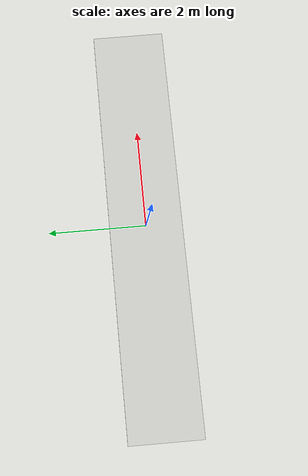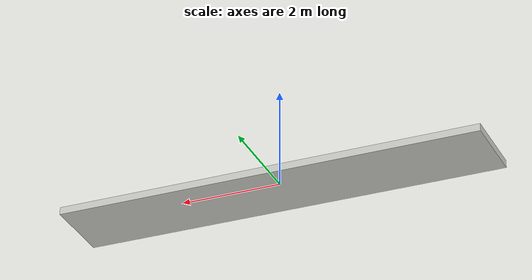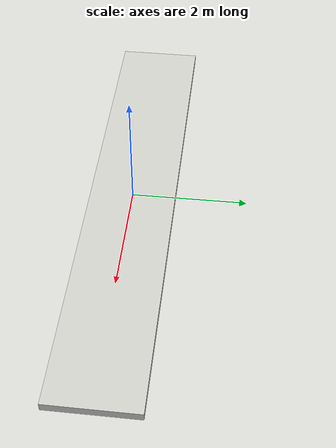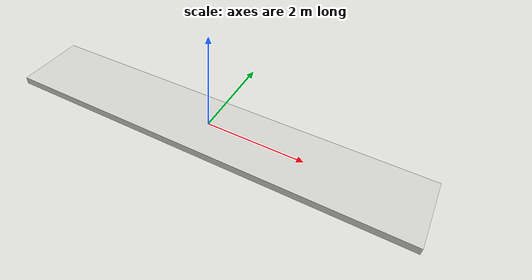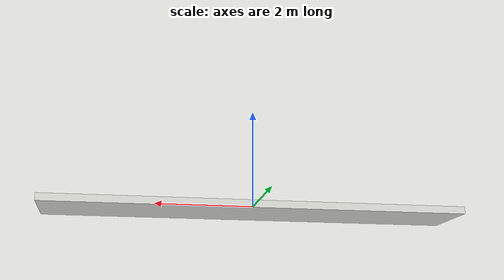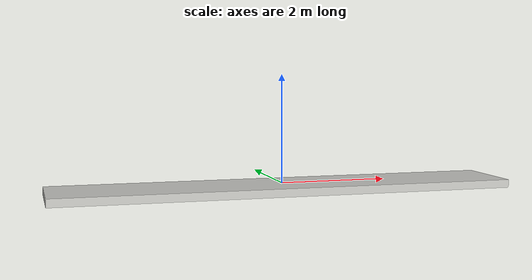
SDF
<?xml version='1.0'?>
<sdf version='1.6'>
  <model name='floor_8_5'>
    <pose frame=''>0 0 -0.076 1.57 0 0</pose>
    <link name='floor_8_5'>
      <collision name='floor_8_5_Collision'>
        <geometry>
          <box>
            <size>8.5 0.15 1.5</size>
          </box>
        </geometry>
        <pose frame=''>0 0 0 0 -0 0</pose>
      </collision>
      <visual name='floor_8_5_Visual'>
        <pose frame=''>0 0 0 0 -0 0</pose>
        <geometry>
          <box>
            <size>8.5 0.15 1.5</size>
          </box>
        </geometry>
        <material>
          <script>
            <uri>file://media/materials/scripts/gazebo.material</uri>
            <name>Gazebo/CeilingTiled</name>
          </script>
          <ambient>1 1 1 1</ambient>
        </material>
        <meta>
          <layer>0</layer>
        </meta>
      </visual>
      <pose frame=''>0 0 0 0 -0 0</pose>
    </link>
    <static>1</static>
  </model>
</sdf>
